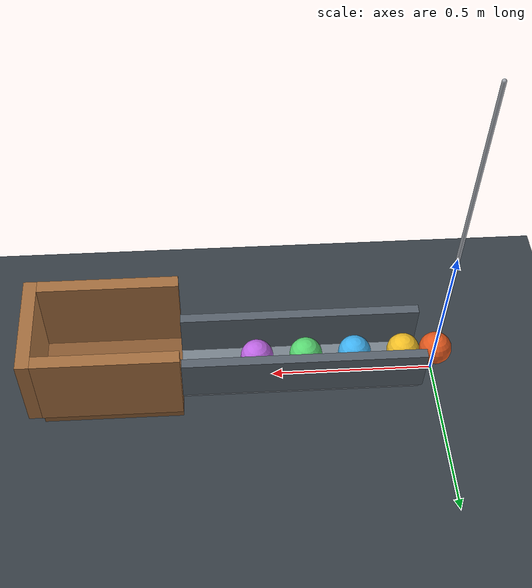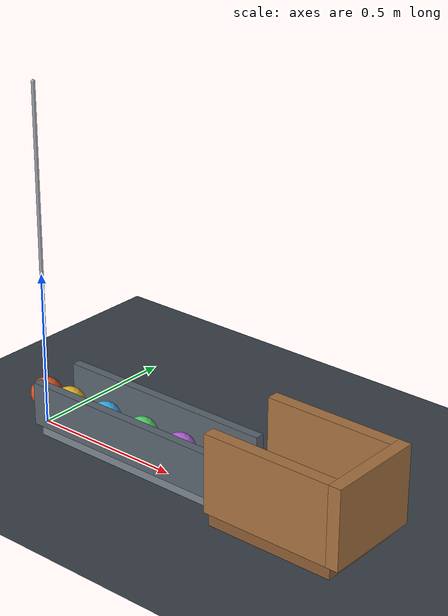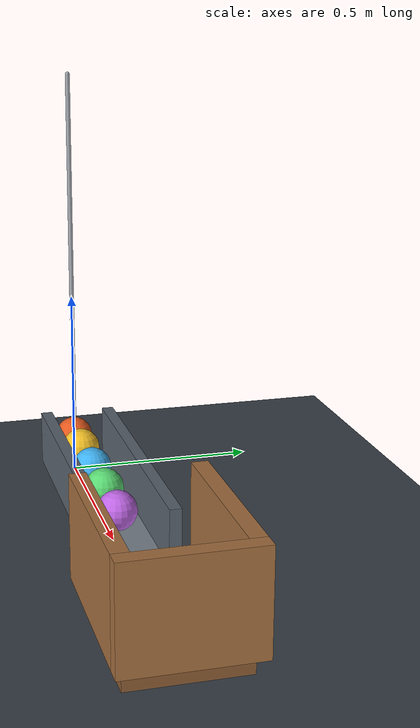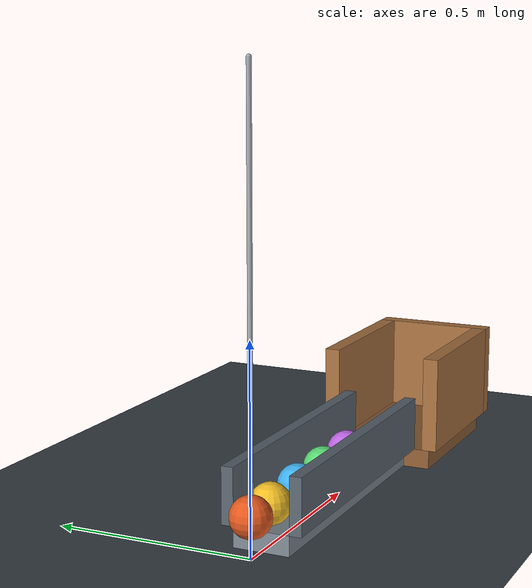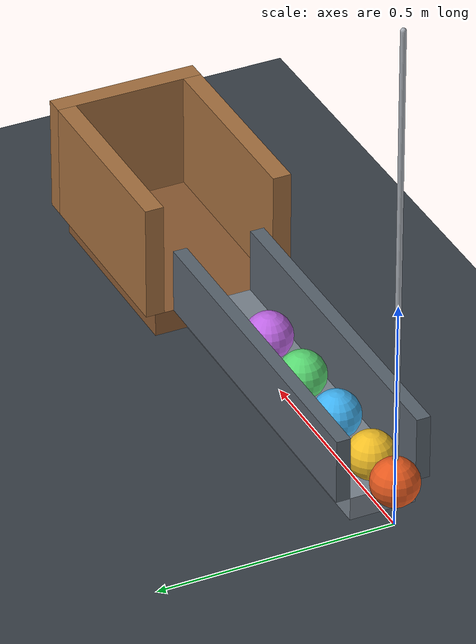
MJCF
<mujoco model="pendulum_four_ball_transfer">
  <compiler angle="radian" inertiafromgeom="true"/>
  <option timestep="0.002" gravity="0 0 -9.81" integrator="implicitfast" solver="Newton" iterations="100" tolerance="1e-10"/>
  <size njmax="1000" nconmax="200"/>

  <visual>
    <global azimuth="135" elevation="-20"/>
  </visual>

  <worldbody>
    <light name="overhead_light" pos="0.3 -1 3" dir="0 0 -1" diffuse="0.8 0.8 0.8"/>
    <camera name="overview" pos="1.8 -3 1.8" xyaxes="0.894 0.447 0 -0.200 0.400 0.894"/>

    <geom name="floor" type="plane" pos="0 0 0" size="4 3 0.1" rgba="0.22 0.25 0.28 1" condim="6" friction="0.6 0.01 0.01" priority="1" solref="0.008 1" solimp="0.95 0.99 0.001"/>

    <!-- The bob center is 1 m below the pivot at the bottom.
         A release angle of pi/3 raises it by exactly 0.5 m. -->
    <body name="pendulum" pos="0 0 1.10">
      <joint name="pendulum_hinge" type="hinge" axis="0 1 0" damping="0.0005"/>
      <geom name="pendulum_rod" type="capsule" fromto="0 0 0 0 0 -0.945" size="0.006" mass="0.01" rgba="0.65 0.67 0.70 1" friction="0.15 0.001 0.0001" solref="-30000 -6" solimp="0.95 0.99 0.001"/>
      <geom name="pendulum_bob" type="sphere" pos="0 0 -1" size="0.05" mass="0.25" rgba="0.90 0.35 0.12 1" condim="6" friction="0.15 0.001 0.0001" solref="-30000 -6" solimp="0.95 0.99 0.001"/>
    </body>

    <!-- Level rail: top surface z=0.05, with lateral guides. -->
    <body name="rail" pos="0 0 0">
      <geom name="rail_bed" type="box" pos="0.415 0 0.025" size="0.365 0.070 0.025" rgba="0.48 0.52 0.56 1" condim="6" friction="0.05 0.001 0.0002" priority="1" solref="0.008 1" solimp="0.95 0.99 0.001"/>
      <geom name="rail_left_guide" type="box" pos="0.415 0.085 0.12" size="0.365 0.015 0.07" rgba="0.35 0.39 0.43 1" condim="6" friction="0.05 0.001 0.0002" priority="1" solref="0.008 1" solimp="0.95 0.99 0.001"/>
      <geom name="rail_right_guide" type="box" pos="0.415 -0.085 0.12" size="0.365 0.015 0.07" rgba="0.35 0.39 0.43 1" condim="6" friction="0.05 0.001 0.0002" priority="1" solref="0.008 1" solimp="0.95 0.99 0.001"/>
    </body>

    <!-- Four identical balls, with center-to-center spacing of 0.15 m. -->
    <body name="ball1" pos="0.10 0 0.10">
      <freejoint name="ball1_free"/>
      <geom name="ball1_sphere" type="sphere" size="0.05" mass="0.25" rgba="0.95 0.75 0.15 1" condim="6" friction="0.15 0.001 0.0001" solref="-30000 -6" solimp="0.95 0.99 0.001"/>
    </body>

    <body name="ball2" pos="0.25 0 0.10">
      <freejoint name="ball2_free"/>
      <geom name="ball2_sphere" type="sphere" size="0.05" mass="0.25" rgba="0.25 0.70 0.95 1" condim="6" friction="0.15 0.001 0.0001" solref="-30000 -6" solimp="0.95 0.99 0.001"/>
    </body>

    <body name="ball3" pos="0.40 0 0.10">
      <freejoint name="ball3_free"/>
      <geom name="ball3_sphere" type="sphere" size="0.05" mass="0.25" rgba="0.35 0.85 0.45 1" condim="6" friction="0.15 0.001 0.0001" solref="-30000 -6" solimp="0.95 0.99 0.001"/>
    </body>

    <body name="ball4" pos="0.55 0 0.10">
      <freejoint name="ball4_free"/>
      <geom name="ball4_sphere" type="sphere" size="0.05" mass="0.25" rgba="0.75 0.40 0.90 1" condim="6" friction="0.15 0.001 0.0001" solref="-30000 -6" solimp="0.95 0.99 0.001"/>
    </body>

    <!-- Open rail-facing mouth; a flush floor and dissipative contacts
         catch the final ball without a raised entry threshold. -->
    <body name="box" pos="0 0 0">
      <geom name="box_base" type="box" pos="0.99 0 0.025" size="0.21 0.14 0.025" rgba="0.55 0.36 0.20 1" condim="6" friction="1.0 0.02 0.06" priority="2" solref="0.006 1" solimp="0.95 0.99 0.001"/>
      <geom name="box_back" type="box" pos="1.22 0 0.175" size="0.02 0.16 0.125" rgba="0.65 0.44 0.25 1" condim="6" friction="1.0 0.02 0.06" priority="2" solref="0.006 1" solimp="0.95 0.99 0.001"/>
      <geom name="box_left" type="box" pos="0.99 0.14 0.175" size="0.21 0.02 0.125" rgba="0.65 0.44 0.25 1" condim="6" friction="1.0 0.02 0.06" priority="2" solref="0.006 1" solimp="0.95 0.99 0.001"/>
      <geom name="box_right" type="box" pos="0.99 -0.14 0.175" size="0.21 0.02 0.125" rgba="0.65 0.44 0.25 1" condim="6" friction="1.0 0.02 0.06" priority="2" solref="0.006 1" solimp="0.95 0.99 0.001"/>
    </body>
  </worldbody>

  <keyframe>
    <key name="start" time="0" qpos="1.047197551196598 0.10 0 0.10 1 0 0 0 0.25 0 0.10 1 0 0 0 0.40 0 0.10 1 0 0 0 0.55 0 0.10 1 0 0 0"/>
  </keyframe>
</mujoco>
